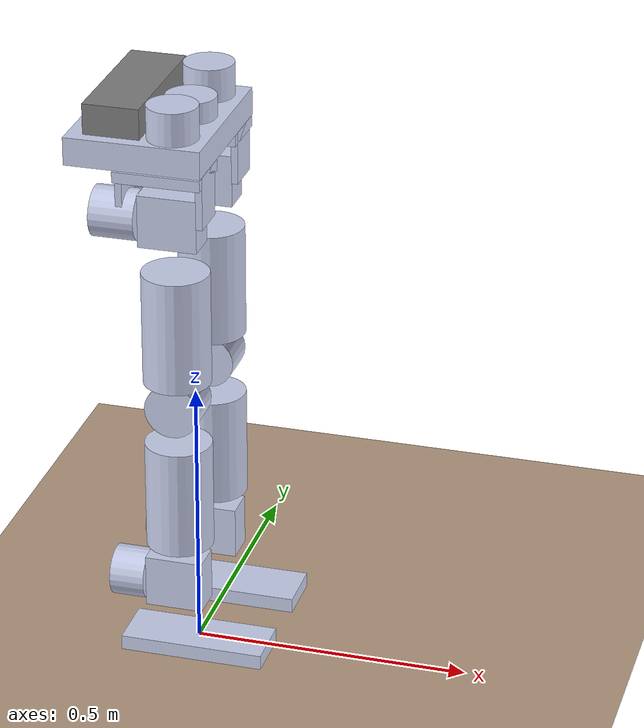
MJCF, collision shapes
<mujoco model="dyros_red_description">
    <compiler angle="radian" meshdir="../meshes/"/>
    <size njmax="1000" nuserdata="600000" nconmax="200"/>

    <default>

        <joint damping="200" frictionloss="0.0"/>

        <motor ctrllimited="true" ctrlrange="-5 5"/>

        <default class="viz">
            <geom contype="0" conaffinity="0" group="1" type="mesh" rgba=".6 .6 .7 1"/>
        </default>

        <!--Since group 2 is collision geom, rendering of group 2 geom is disabled by default in mujoco, but enabling is possible by press '2' on keyboard -->
        <default class="cls">
            <geom group="2" rgba="0.79216 0.81961 0.93333 0.5"/>
        </default>

        <default class="cls_f">
            <geom group="2" rgba="0.79216 0.81961 0.93333 0.1" friction="1 0.005 0.0001"/>
        </default>

        <default class="FTsensor">
            <site type="cylinder" size="0.005 0.005" group="4" rgba=".1 .1 .9 1"/>
        </default>
    </default>

    <option timestep='8.333333333333333333333333333333e-04' iterations="100" tolerance="1e-11" solver="Newton" jacobian="dense" cone="elliptic" noslip_iterations="75" noslip_tolerance="1e-9"/>

    <visual>
        <map fogend="5" fogstart="3"/>
    </visual>

    <asset>
        <mesh name="Pelvis_link" file="Pelvis_link2.STL" scale="0.001 0.001 0.001"/>
        <mesh name="HipRoll_R_link" file="HipRoll_R_link.STL" />
        <mesh name="HipCenter_R_Link" file="HipCenter_R_Link.STL" />
        <mesh name="Thigh_R_Link" file="Thigh_R_Link.STL" />
        <mesh name="Knee_R_Link" file="Knee_R_Link.STL" />
        <mesh name="AnkleCenter_R_Link" file="AnkleCenter_R_Link.STL" />
        <mesh name="AnkleRoll_R_Link" file="AnkleRoll_R_Link.STL" />
        <mesh name="HipRoll_L_Link" file="HipRoll_L_Link.STL" />
        <mesh name="HipCenter_L_Link" file="HipCenter_L_Link.STL" />
        <mesh name="Thigh_L_Link" file="Thigh_L_Link.STL" />
        <mesh name="Knee_L_Link" file="Knee_L_Link.STL" />
        <mesh name="AnkleCenter_L_Link" file="AnkleCenter_L_Link.STL" />
        <mesh name="AnkleRoll_L_Link" file="AnkleRoll_L_Link.STL" />
        <mesh name="waist1" file="waistyaw.STL" scale="0.001 0.001 0.001"/>
        <mesh name="waist2" file="waist2.STL" />
        <mesh name="upperbody" file="upperbody.STL" />
        <mesh name="R_shoulder1" file="R_shoulder1.STL" />
        <mesh name="R_shoulder2" file="R_shoulder2.STL" />
        <mesh name="R_shoulder3" file="R_shoulder3.STL" />
        <mesh name="R_arm" file="R_arm.STL" />
        <mesh name="R_elbow" file="R_elbow.STL" />
        <mesh name="R_forearm" file="R_forearm.STL" />
        <mesh name="R_wrist1" file="R_wrist1.STL" />
        <mesh name="L_shoulder1" file="L_shoulder1.STL" />
        <mesh name="L_shoulder2" file="L_shoulder2.STL" />
        <mesh name="L_shoulder3" file="L_shoulder3.STL" />
        <mesh name="L_arm" file="L_arm.STL" />
        <mesh name="L_elbow" file="L_elbow.STL" />
        <mesh name="L_forearm" file="L_forearm.STL" />
        <mesh name="L_wrist1" file="L_wrist1.STL" />
        <mesh name="neck" file="neck.STL" />
        <mesh name="head" file="head.STL" />
        <mesh name="hand" file="wrist2joint.STL" scale="0.001 0.001 0.001"/>

        <!--texture type="skybox" builtin="gradient" width="128" height="128" rgb1="1 1 1" rgb2="0 0 0"/-->
        <texture name="texplane" type="2d" builtin="checker" rgb1=".4 .4 .4" rgb2=".6 .6 .6" width="100" height="100"/>
        <material name='MatPlane' reflectance='0.3' texture="texplane" texrepeat="20 20" texuniform="true" specular="1"/>
    </asset>

    <worldbody>
        <geom name="ground" type="plane" pos="0 0 0.0175" size="1000 1000 .05" rgba="0.7 0.6 0.5 1" conaffinity="1" contype="1" material="MatPlane" group="3"/>

        <!--geom pos="0 0 0" type="plane" size="10 10 .5" rgba=".7 .7 .7 1" material="MatPlane"/-->

        <!--geom name="box" type="box" size="0.5 0.5 0.5" pos="-1.5 0 0.5"/-->
        <!--geom name="box2" type="box" size="0.2 0.2 0.5" pos="-1.5 0 1.2"/-->
        <light directional="true" diffuse=".8 .8 .8" pos="0 0 10" dir="0 0 -10"/>
        <light directional="true" diffuse=".5 .5 .5" pos="10 0 0" dir="-10 0 0"/>
        <!--light mode='targetbodycom' target='base_link' directional='false' diffuse='.8 .8 .8' specular='0.8 0.8 0.8' pos='0 0 10.0' dir='0 0 -1'/-->

        <body name="base_link" pos="0 0 1" euler="0 0 0">
            <camera name="track" mode="trackcom" pos="0 -4 0" xyaxes="1 0 0 0 0 1"/>
            <joint name="virtual_joint" type="free" limited='false' frictionloss="0" damping="0" stiffness="0" armature="0"/>
            <inertial pos="-0.0099622 0 0.012618" quat="0.5 0.5 -0.5 0.5" mass="0.90054" diaginertia="0.010198 0.0094751 0.0022311" />
            <geom class="viz" rgba="0.20313 0.20313 0.20313 1" quat="0.5 0.5 0.5 0.5" mesh="Pelvis_link" />
            <geom size="0.045 0.044" pos="0 0 0.019" type="cylinder" class="cls" />
            <geom size="0.045 0.055" pos="0 0.1025 0.03" type="cylinder" class="cls" />
            <geom size="0.045 0.055" pos="0 -0.1025 0.03" type="cylinder" class="cls" />
            <geom size="0.12 0.1525 0.025" pos="-0.058 0 0" type="box" class="cls" />
            <geom size="0.05 0.13 0.05" pos="-0.1 0 0.03" type="box" group="1"/>
            <site name="Pelvis_IMU" type="cylinder" size="0.005 0.005" group="4" rgba=".1 .1 .9 1"/>
            <body name="R_HipRoll_Link" pos="0 -0.1025 -0.1225">
                <inertial pos="-0.06477 0 0.05149" quat="-4.55125e-06 0.706109 4.5641e-06 0.708103" mass="2.679" diaginertia="0.114073 0.114073 0.114073" />
                <joint name="R_HipRoll_Joint" pos="0 0 0" axis="0 0 1" limited="true" range="-1.23 1.23" />
                <geom class="viz" rgba="0.20313 0.20313 0.20313 1" mesh="HipRoll_R_link" />
                <geom size="0.045 0.04" pos="-0.1 0 0" quat="0.707107 0 0.707107 0" type="cylinder" class="cls" />
                <geom size="0.077 0.05 0.01" pos="-0.016 0 0.085" type="box" class="cls" />
                <geom size="0.006 0.036 0.0475" pos="0.055 0 0.0475" type="box" class="cls" />
                <geom size="0.006 0.036 0.0475" pos="-0.087 0 0.0475" type="box" class="cls" />
                <body name="R_HipCenter_Link" pos="0 0 0">
                    <inertial pos="-0.04801 -0.0022 2e-05" quat="0.999982 -0.00595644 4.6683e-06 -2.7807e-08" mass="2.67" diaginertia="0.124407 0.124407 0.124407" />
                    <joint name="R_HipCenter_Joint" pos="0 0 0" axis="1 0 0" limited="true" range="-1.23 1.23" />
                    <geom class="viz" rgba="0.20313 0.20313 0.20313 1" mesh="HipCenter_R_Link" />
                    <geom size="0.05225 0.03 0.0475" pos="-0.0045 0 0" type="box" class="cls" />
                    <body name="R_Thigh_Link" pos="0 0 0">
                        <inertial pos="-0.00042 -0.00032 -0.18904" quat="0.707068 0.00145661 -0.000977354 0.707144" mass="5.366" diaginertia="0.339107 0.339107 0.339107" />
                        <joint name="R_Thigh_Joint" pos="0 0 0" axis="0 1 0" limited="true" range="-1.75 1.75" />
                        <geom size="0.049 0.038815" pos="0 0 -0.35" quat="0.707107 0.707107 0 0" type="cylinder" class="cls" />
                        <geom size="0.06 0.10375" pos="0 0 -0.2023" type="cylinder" class="cls" />
                        <geom class="viz" rgba="0.85938 0.07813 0.23438 1" mesh="Thigh_R_Link" />
                        <body name="R_Knee_Link" pos="0 0 -0.35">
                            <inertial pos="0.00429 0.00214 -0.1428" quat="0.707067 0.00548297 0.00738884 0.707087" mass="3.883" diaginertia="0.23895 0.23895 0.23895" />
                            <joint name="R_Knee_Joint" pos="0 0 0" axis="0 1 0" limited="true" range="0 2.62" />
                            <geom class="viz" rgba="0.85938 0.07813 0.23438 1" mesh="Knee_R_Link" />
                            <geom size="0.06 0.1" pos="0 0 -0.175" type="cylinder" class="cls" />
                            <body name="R_AnkleCenter_Link" pos="0 0 -0.35">
                                <inertial pos="-0.00419 -0.0018 -0.0003" quat="0.498858 0.50114 0.501134 0.498863" mass="2.51" diaginertia="0.139901 0.139901 0.139901" />
                                <joint name="R_AnkleCenter_Joint" pos="0 0 0" axis="0 1 0" limited="true" range="-1.57 1.57" />
                                <geom class="viz" rgba="0.20313 0.20313 0.20313 1" mesh="AnkleCenter_R_Link" />
                                <geom size="0.05225 0.03 0.0475" pos="-0.0045 0 0" type="box" class="cls" />
                                <body name="R_AnkleRoll_Link" pos="0 0 0">
                                    <inertial pos="-0.00802 0 -0.08535" quat="0.999815 -0.000353889 0.0192239 9.30274e-05" mass="3.464" diaginertia="0.07616 0.07616 0.07616" />
                                    <joint name="R_AnkleRoll_Joint" pos="0 0 0" axis="1 0 0" limited="true" range="-1.23 1.23" />
                                    <geom class="viz" rgba="0.85938 0.07813 0.23438 1" mesh="AnkleRoll_R_Link" />
                                    <geom size="0.045 0.03125" pos="-0.08875 0 0" quat="0.707107 0 -0.707107 0" type="cylinder" class="cls" />
                                    <body name="R_Foot_Plate" pos="0 0 -0.1233">
                                        <inertial pos="0.0 0.0 0.0" quat="0.0 0.0 0 1" mass="0.0001" diaginertia="0.0001 0.0001 0.0001" />
                                        <geom size="0.13 0.05 0.0135" pos="0.0317 0 0" type="box" class="cls_f"/>
                                        <site class="FTsensor" name="RF_FT" pos="0 0 0.0135"/>
                                    </body>
                                </body>
                            </body>
                        </body>
                    </body>
                </body>
            </body>
            <body name="L_HipRoll_Link" pos="0 0.1025 -0.1225">
                <inertial pos="-0.06477 0 0.05149" quat="-4.55125e-06 0.706109 4.5641e-06 0.708103" mass="2.679" diaginertia="0.114073 0.114073 0.114073" />
                <joint name="L_HipRoll_Joint" pos="0 0 0" axis="0 0 1" limited="true" range="-1.23 1.23" />
                <geom class="viz" rgba="0.20313 0.20313 0.20313 1" mesh="HipRoll_L_Link" />
                <geom size="0.045 0.04" pos="-0.1 0 0" quat="0.707107 0 0.707107 0" type="cylinder" class="cls" />
                <geom size="0.077 0.05 0.01" pos="-0.016 0 0.085" type="box" class="cls" />
                <geom size="0.006 0.036 0.0475" pos="0.055 0 0.0475" type="box" class="cls" />
                <geom size="0.006 0.036 0.0475" pos="-0.087 0 0.0475" type="box" class="cls" />
                <body name="L_HipCenter_Link" pos="0 0 0">
                    <inertial pos="-0.04801 0.0022 2e-05" quat="0.999982 -0.00595644 4.6683e-06 -2.7807e-08" mass="2.67" diaginertia="0.124407 0.124407 0.124407" />
                    <joint name="L_HipCenter_Joint" pos="0 0 0" axis="1 0 0" limited="true" range="-1.23 1.23" />
                    <geom class="viz" rgba="0.20313 0.20313 0.20313 1" mesh="HipCenter_L_Link" />
                    <geom size="0.05225 0.03 0.0475" pos="-0.0045 0 0" type="box" class="cls" />
                    <body name="L_Thigh_Link" pos="0 0 0">
                        <inertial pos="-0.00042 0.00032 -0.18904" quat="0.707068 0.00145661 -0.000977354 0.707144" mass="5.366" diaginertia="0.339107 0.339107 0.339107" />
                        <joint name="L_Thigh_Joint" pos="0 0 0" axis="0 1 0" limited="true" range="-1.75 1.75" />
                        <geom class="viz" rgba="0.85938 0.07813 0.23438 1" mesh="Thigh_L_Link" />
                        <geom size="0.049 0.038815" pos="0 0 -0.35" quat="0.707107 0.707107 0 0" type="cylinder" class="cls" />
                        <geom size="0.06 0.10375" pos="0 0 -0.2023" type="cylinder" class="cls" />
                        <body name="L_Knee_Link" pos="0 0 -0.35">
                            <inertial pos="0.00429 -0.00214 -0.1428" quat="0.707067 0.00548297 0.00738884 0.707087" mass="3.883" diaginertia="0.23895 0.23895 0.23895" />
                            <joint name="L_Knee_Joint" pos="0 0 0" axis="0 1 0" limited="true" range="0 2.62" />
                            <geom class="viz" rgba="0.85938 0.07813 0.23438 1" mesh="Knee_L_Link" />
                            <geom size="0.06 0.1" pos="0 0 -0.175" type="cylinder" class="cls" />
                            <body name="L_AnkleCenter_Link" pos="0 0 -0.35">
                                <inertial pos="-0.00419 0.0018 -0.0003" quat="0.498858 0.50114 0.501134 0.498863" mass="2.51" diaginertia="0.139901 0.139901 0.139901" />
                                <joint name="L_AnkleCenter_Joint" pos="0 0 0" axis="0 1 0" limited="true" range="-1.57 1.57" />
                                <geom class="viz" rgba="0.20313 0.20313 0.20313 1" mesh="AnkleCenter_L_Link" />
                                <geom size="0.05225 0.03 0.0475" pos="-0.0045 0 0" type="box" class="cls" />
                                <body name="L_AnkleRoll_Link" pos="0 0 0">
                                    <inertial pos="-0.00802 0 -0.08535" quat="0.999815 -0.000353889 0.0192239 9.30274e-05" mass="3.464" diaginertia="0.07616 0.07616 0.07616" />
                                    <joint name="L_AnkleRoll_Joint" pos="0 0 0" axis="1 0 0" limited="true" range="-1.23 1.23" />
                                    <geom class="viz" rgba="0.85938 0.07813 0.23438 1" mesh="AnkleRoll_L_Link" />
                                    <geom size="0.045 0.03125" pos="-0.08875 0 0" quat="0.707107 0 -0.707107 0" type="cylinder" class="cls" />
                                    <body name="L_Foot_Plate" pos="0 0 -0.1233">
                                        <inertial pos="0.0 0.0 0.0" quat="0.0 0.0 0 1" mass="0.0001" diaginertia="0.0001 0.0001 0.0001" />
                                        <geom size="0.13 0.05 0.0135" pos="0.0317 0 0" type="box" class="cls_f"/>
                                        <site class="FTsensor" name="LF_FT" pos="0 0 0.0135"/>
                                    </body>
                                </body>
                            </body>
                        </body>
                    </body>
                </body>
            </body>
        </body>
    </worldbody>

    <actuator>
        <position name="R_HipRoll_Motor" joint="R_HipRoll_Joint" kp="12000"/>
        <position name="R_HipCenter_Motor" joint="R_HipCenter_Joint" kp="12000"/>
        <position name="R_Thigh_Motor" joint="R_Thigh_Joint" kp="12000"/>
        <position name="R_Knee_Motor" joint="R_Knee_Joint" kp="12000"/>
        <position name="R_AnkleCenter_Motor" joint="R_AnkleCenter_Joint" kp="12000"/>
        <position name="R_AnkleRoll_Motor" joint="R_AnkleRoll_Joint" kp="12000"/>

        <position name="L_HipRoll_Motor" joint="L_HipRoll_Joint" kp="12000"/>
        <position name="L_HipCenter_Motor" joint="L_HipCenter_Joint" kp="12000"/>
        <position name="L_Thigh_Motor" joint="L_Thigh_Joint" kp="12000"/>
        <position name="L_Knee_Motor" joint="L_Knee_Joint" kp="12000"/>
        <position name="L_AnkleCenter_Motor" joint="L_AnkleCenter_Joint" kp="12000"/>
        <position name="L_AnkleRoll_Motor" joint="L_AnkleRoll_Joint" kp="12000"/>

    </actuator>

        <!--Initial Position Setting -->
</mujoco>
